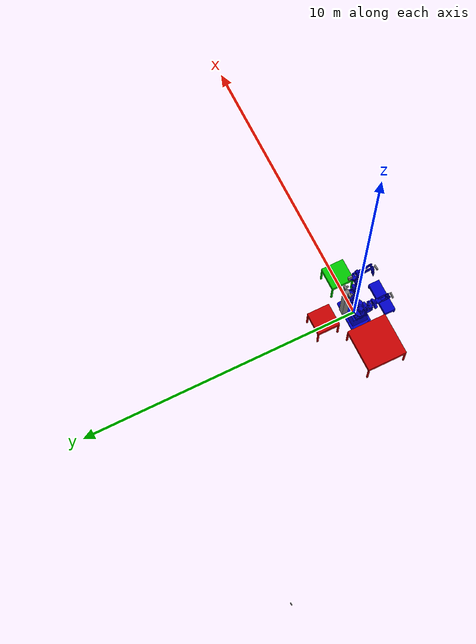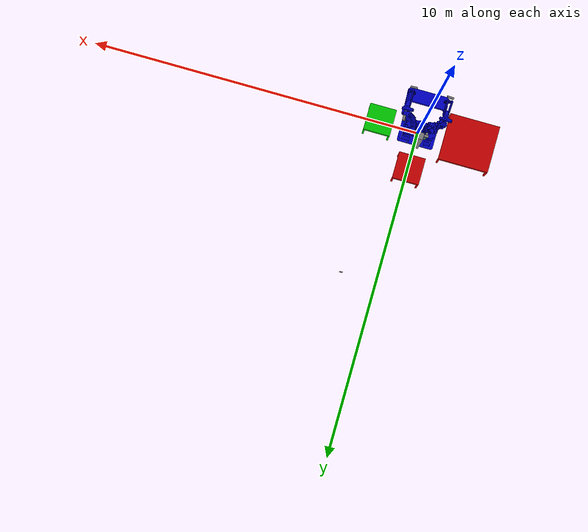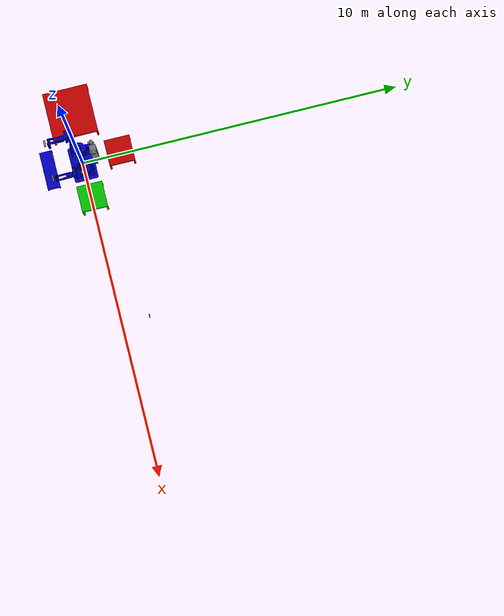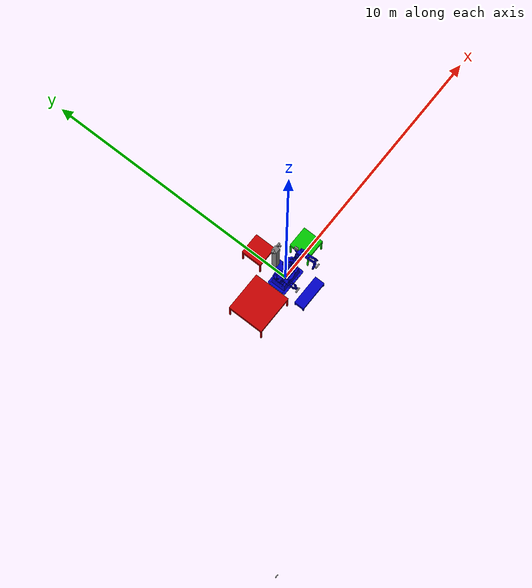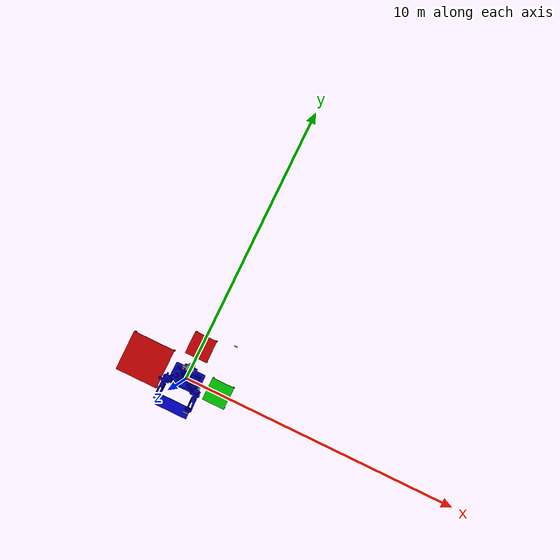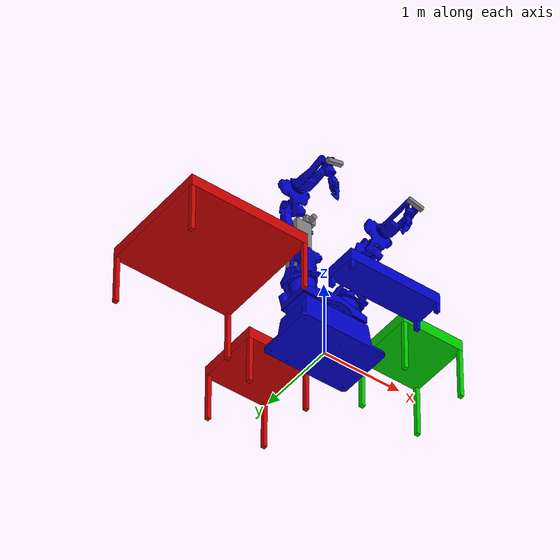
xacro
<?xml version="1.0"?>
<robot xmlns:xacro="http://www.ros.org/wiki/xacro" name="clopema">
	<xacro:include filename="$(find clopema_description)/urdf/common.urdf.xacro" />
	<xacro:include filename="$(find clopema_description)/urdf/room_ctu.urdf.xacro" />
	<xacro:include filename="$(find clopema_description)/urdf/base_link.urdf.xacro" />
	<xacro:include filename="$(find clopema_description)/urdf/ma1400/ma1400.urdf.xacro" />
    <xacro:include filename="$(find clopema_description)/urdf/gripper_v2.urdf.xacro" />
    <xacro:include filename="$(find clopema_description)/urdf/gripper_v3.urdf.xacro" />
	<xacro:include filename="$(find clopema_description)/urdf/r750.urdf.xacro" />
	<xacro:include filename="$(find clopema_description)/urdf/table_adjustable.urdf.xacro" />
    <xacro:include filename="$(find clopema_description)/urdf/table_adjustable_frames_only.urdf.xacro" />
	<xacro:include filename="$(find clopema_description)/urdf/colObjects.urdf.xacro" />
	<xacro:include filename="$(find clopema_description)/urdf/force_sensor.urdf.xacro" />
	<xacro:include filename="$(find clopema_description)/urdf/xtion.urdf.xacro" />
	<xacro:include filename="$(find clopema_description)/urdf/alvar_marker.urdf.xacro" />
	<xacro:include filename="$(find clopema_description)/urdf/robot_head_UG.xacro" />
    <xacro:include filename="$(find clopema_description)/urdf/toradex.urdf.xacro" />
    <xacro:include filename="$(find clopema_description)/urdf/hanging_string.xacro" />

	<xacro:base_link/>
	<xacro:room_ctu/>
	<xacro:r750 parent="base_link" suffix="" color="blue">
		<origin xyz="0.0 0.0 0.0" rpy="0 0 0"/>
	</xacro:r750>

	<xacro:ma1400 parent="r750" suffix="r1_" color="blue">
		<origin xyz="0 -.25 0.1600" rpy="${15*TO_RAD} 0 0"/>
	</xacro:ma1400>
	<xacro:ma1400 parent="r750" suffix="r2_" color="blue">
		<origin xyz="0 .25 0.1600" rpy="-${15*TO_RAD} 0 0"/>
	</xacro:ma1400>

	<xacro:gripper_v3 parent="tip_link" suffix="r1_" color="blue">
		<origin xyz="0.000 0 0.04775" rpy="0 0 ${PI}"/>
	</xacro:gripper_v3>
	<xacro:gripper_v3 parent="tip_link" suffix="r2_" color="blue">
		<origin xyz="0.000 0 0.04775" rpy="0 0 ${PI}"/>
	</xacro:gripper_v3>

    <xacro:robot_head parent="r750">
        <origin rpy="0 0 0" xyz="-0.45 0.15 1.68"/>
    </xacro:robot_head>

    <xacro:alvar_marker parent="r1_tip_link" suffix="r1" width="0.045">
        <origin xyz="-0.032 0 0.0955" rpy="0 -${PI/2} 0"/>
    </xacro:alvar_marker>

    <xacro:alvar_marker parent="r2_tip_link" suffix="r2" width="0.045">
        <origin xyz="-0.032 0 0.0955" rpy="0 -${PI/2} 0"/>
    </xacro:alvar_marker>

    <xacro:alvar_marker parent="base_link" suffix="r750_1" width="0.045">
        <origin xyz="-0.382 -0.2 0.5756" rpy="-${PI/2}  0 0"/>
    </xacro:alvar_marker>

    <xacro:alvar_marker parent="base_link" suffix="r750_2" width="0.045">
        <origin xyz="0.385 -0.2 0.5756" rpy="${PI/2}  0 0"/>
    </xacro:alvar_marker>

    <link name="calib_target"> </link>
    <joint name="calib_target_joint" type="fixed">
        <origin xyz="2.30 0.03 0.97" rpy="0 -${PI/2} 0"/>
        <parent link="base_link"/>
        <child link="calib_target"/>
    </joint>

	<link name="torso_link"/>
	<joint name="torso_link_f" type="fixed">
		  <child link="torso_link"/>
		  <parent link="r750"/>
		  <origin xyz="0 0 -0.51" rpy="0 0 ${PI/2}"/>
	</joint>
	<link name="r1_gg"/>
	<joint name="r1_gg_joint_t" type="fixed">
		<child link="r1_gg"/>
		<parent link="r1_ee"/>
		<origin xyz="-0.025 0 0" rpy="0 0 0"/>
	</joint>

	<link name="r2_gg"/>
	<joint name="r2_gg_joint_t" type="fixed">
		<child link="r2_gg"/>
		<parent link="r2_ee"/>
		<origin xyz="-0.025 0 0" rpy="0 0 0"/>
	</joint>

    <xacro:colObjects/>
    <xacro:xtion parent="r2_link_6" suffix="2" prefix="" color="grey">
        <origin xyz="-0.13 -0.15 0" rpy="0 ${-PI/2} 0"/>
    </xacro:xtion>
    <xacro:xtion parent="r1_link_6" suffix="1" prefix="" color="grey">
        <origin xyz="-0.13 -0.15 0" rpy="0 ${-PI/2} 0"/>
    </xacro:xtion>

    <xacro:xtion parent="torso_link" suffix="3" prefix="" color="grey">
        <origin xyz="0 0 -50.0" rpy="0 0 0"/> <!-- Go away if not calibrated -->
    </xacro:xtion>

    <xacro:force_sensor parent="tip_link" suffix="r1_">
        <origin xyz="0 0 0.035" rpy="0 0 ${PI/3}"/>
    </xacro:force_sensor>
    <xacro:force_sensor parent="tip_link" suffix="r2_">
        <origin xyz="0 0 0.035" rpy="0 0 ${PI/3}"/>
    </xacro:force_sensor>

    <xacro:table parent="base_link" suffix="t1_" color="green" height="0.81" deskx="0.8" desky="0.8">
    	<origin xyz="1.2 0.050 0.81" rpy="0 0 0"/>
    </xacro:table>
    <xacro:table parent="base_link" suffix="t3_" color="red" height="0.777" deskx="1.5" desky="1.4">
        <origin xyz="-1.50 0.0 0.777" rpy="0 0 0"/>
    </xacro:table>

    <xacro:table parent="base_link" suffix="t4_" color="red" height="0.765" deskx="0.8" desky="0.8">
        <origin xyz="0.0 1.2 0.765" rpy="0 0 0"/>
    </xacro:table>

    <xacro:table parent="base_link" suffix="tsorting_" color="blue" height="0.26" deskx="0.39" desky="1.17">
        <origin xyz="0.0 -1.04 0.26" rpy="0 0 ${PI/2}"/>
    </xacro:table>

    <xacro:toradex parent="r2_link_4" prefix="r2_" color="grey">
        <origin xyz="0.1 .15 -.01" rpy="0 0 0"/>
    </xacro:toradex>

</robot>

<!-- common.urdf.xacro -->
<robot xmlns:xacro="http://www.ros.org/wiki/xacro">

	<xacro:property name="PI" value="3.14159265" />
	<xacro:property name="TO_RAD" value="0.017453292" />

	<xacro:macro name="default_inertial">
		<inertial>
			<mass value="1.0" />
			<inertia ixx="1.0" ixy="0.0" ixz="0.0" iyy="1.0" iyz="0.0" izz="1.0" />
		</inertial>
	</xacro:macro>
	<material name="blue">
		<color rgba="0 0 .8 1"/>
	</material>
	<material name="red">
		<color rgba=".8 0 0 1"/>
	</material>
	<material name="green">
		<color rgba="0 .8 0 1"/>
	</material>
	<material name="white">
		<color rgba="1 1 1 1"/>
	</material>
	<material name="grey">
		<color rgba="0.5 0.5 0.5 1"/>
	</material>
	<material name="black">
		<color rgba="0.0 0.0 0.0 1"/>
	</material>
</robot>

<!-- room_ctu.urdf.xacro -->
<robot xmlns:xacro="http://www.ros.org/wiki/xacro">
	<xacro:macro name="room_ctu">
		<link name="ctu_floor">
			<xacro:default_inertial/>
			<collision>
				<geometry>
					<box size="4.000 4.0 0.2"/>
				</geometry>
				<origin xyz="0.0 0.0 0.0"/>
			</collision>
		</link>
		<link name="ctu_roof_1">
			<xacro:default_inertial/>
			<collision>
				<geometry>
					<box size="4.000 0.600 0.2"/>
				</geometry>
				<origin xyz="0.0 0.0 0.1"/>
			</collision>
		</link>
		<link name="ctu_roof_2">
			<xacro:default_inertial/>
			<collision>
				<geometry>
					<box size="4.000 2.470 0.2"/>
				</geometry>
				<origin xyz="0.0 0.0 0.1"/>
			</collision>
		</link>
		<link name="ctu_roof_3">
			<xacro:default_inertial/>
			<collision>
				<geometry>
					<box size="4.000 0.8 0.2"/>
				</geometry>
				<origin xyz="0.0 0.0 0.1" rpy="-0.5835 0 0"/>
			</collision>
		</link>
		<link name="ctu_wall_1">
			<xacro:default_inertial/>
			<collision>
				<geometry>
					<box size="4.000 0.200 2.55"/>
				</geometry>
				<origin xyz="0.0 0.1 1.275" rpy="0 0 0"/>
			</collision>
		</link>
		<link name="ctu_wall_1_bottom">
			<xacro:default_inertial/>
			<collision>
				<geometry>
					<box size="4.000 0.200 2.05"/>
				</geometry>
				<origin xyz="0.0 0.1 1.025" rpy="0 0 0"/>
			</collision>
		</link>
		<link name="ctu_wall_2">
			<xacro:default_inertial/>
			<collision>
				<geometry>
					<box size="4.000 0.200 2.55"/>
				</geometry>
				<origin xyz="0.0 -0.1 1.275" rpy="0 0 0"/>
			</collision>
		</link>
		<link name="ctu_wall_3">
			<xacro:default_inertial/>
			<collision>
				<geometry>
					<box size="0.200 4.000 2.55"/>
				</geometry>
				<origin xyz="0.1 0.0 1.275" rpy="0 0 0"/>
			</collision>
		</link>
		<link name="ctu_wall_4">
			<xacro:default_inertial/>
			<collision>
				<geometry>
					<box size="0.200 4.000 2.55"/>
				</geometry>
				<origin xyz="-0.1 0.0 1.275" rpy="0 0 0"/>
			</collision>
		</link>
		<joint name="ctu_f_floor" type="fixed">
                        <origin xyz="0.0 -0.2 0" rpy="0 0 0"/>
                        <parent link="base_link"/>
                        <child link="ctu_floor"/>
                </joint>
		<joint name="ctu_f_roof_1" type="fixed">
                        <origin xyz="0 0.77 2.45" rpy="0 0 0"/>
                        <parent link="base_link"/>
                        <child link="ctu_roof_1"/>
                </joint>
		<joint name="ctu_f_roof_2" type="fixed">
                        <origin xyz="0 -0.765 2.55" rpy="0 0 0"/>
                        <parent link="base_link"/>
                        <child link="ctu_roof_2"/>
                </joint>
		<joint name="ctu_f_roof_3" type="fixed">
			<origin xyz="0 1.335 2.27500" rpy="0 0 0"/>
                        <parent link="base_link"/>
                        <child link="ctu_roof_3"/>
                </joint>
		<joint name="ctu_f_wall_1" type="fixed">
			<origin xyz="0.0 1.6 2.05" rpy="0 0 0"/>
                        <parent link="base_link"/>
                        <child link="ctu_wall_1"/>
                </joint>
		<joint name="ctu_f_wall_1_bottom" type="fixed">
			<origin xyz="0.0 1.8 0.0" rpy="0 0 0"/>
                        <parent link="base_link"/>
                        <child link="ctu_wall_1_bottom"/>
                </joint>
		<joint name="ctu_f_wall_2" type="fixed">
			<origin xyz=".0 -2.0 0" rpy="0 0 0"/>
                        <parent link="base_link"/>
                        <child link="ctu_wall_2"/>
                </joint>
		<joint name="ctu_f_wall_3" type="fixed">
			<origin xyz="2.0 0 0" rpy="0 0 0"/>
                        <parent link="base_link"/>
                        <child link="ctu_wall_3"/>
                </joint>
		<joint name="ctu_f_wall_4" type="fixed">
			<origin xyz="-2.0 0 0" rpy="0 0 0"/>
                        <parent link="base_link"/>
                        <child link="ctu_wall_4"/>
                </joint>
	</xacro:macro>
</robot>

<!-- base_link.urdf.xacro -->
<robot xmlns:xacro="http://www.ros.org/wiki/xacro">
	<xacro:macro name="base_link">
		<link name="base_link">
		</link>
	</xacro:macro>
</robot>

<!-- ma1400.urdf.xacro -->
<robot xmlns:xacro="http://www.ros.org/wiki/xacro">

	<xacro:include filename="$(find clopema_description)/urdf/ma1400/link_1.urdf.xacro" />
	<xacro:include filename="$(find clopema_description)/urdf/ma1400/link_2.urdf.xacro" />
	<xacro:include filename="$(find clopema_description)/urdf/ma1400/link_3.urdf.xacro" />
	<xacro:include filename="$(find clopema_description)/urdf/ma1400/link_4.urdf.xacro" />
	<xacro:include filename="$(find clopema_description)/urdf/ma1400/link_5.urdf.xacro" />
	<xacro:include filename="$(find clopema_description)/urdf/ma1400/link_6.urdf.xacro" />
	<xacro:include filename="$(find clopema_description)/urdf/ma1400/tip_link.urdf.xacro" />

	<xacro:macro name="ma1400" params="*origin parent suffix color">

		<xacro:link_1 parent="${parent}" suffix="${suffix}" color="${color}">
			<insert_block name="origin" />
		</xacro:link_1>
		<xacro:link_2 parent="link_1" suffix="${suffix}" color="${color}">
			<origin xyz="0.0 0.0 0.0" rpy="0 0 0"/>
		</xacro:link_2>
		<xacro:link_3 parent="link_2" suffix="${suffix}" color="${color}">
			<origin xyz="0.150 0 ${0.2715+0.1785}" rpy="-${PI/2} 0 0"/>
		</xacro:link_3>
		<xacro:link_4 parent="link_3" suffix="${suffix}" color="${color}">
			<origin xyz="0.0 -0.614 0" rpy="${PI} 0 ${-PI/2}"/>
		</xacro:link_4>
		<xacro:link_5 parent="link_4" suffix="${suffix}" color="${color}">
			<origin xyz="0.2 0 0.0" rpy="${-PI/2} 0 0"/>
		</xacro:link_5>
		<xacro:link_6 parent="link_5" suffix="${suffix}" color="${color}">
			<origin xyz="0 0 -0.640" rpy="${PI/2} 0 0"/>
		</xacro:link_6>
		<xacro:tip_link parent="link_6" suffix="${suffix}" color="${color}">
			<origin xyz="0 -0.03 0" rpy="${PI/2} 0 ${-PI/2}"/>
		</xacro:tip_link>
	</xacro:macro>
</robot>

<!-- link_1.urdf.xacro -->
<robot xmlns:xacro="http://www.ros.org/wiki/xacro">
	<xacro:macro name="link_1" params="*origin parent suffix color">
		<link name="${suffix}link_1">
			<xacro:default_inertial/>
			<visual>
				<geometry>
					<mesh scale="0.001 0.001 0.001" filename="package://clopema_description/meshes/link1.stl"/>
				</geometry>
				<material name="${color}" />
				<origin xyz="0 0 0"/>
			</visual>
			<collision>
				<geometry>
					<box size="0.3962 0.303 0.1785"/>
				</geometry>
				<origin xyz="-0.0451 -0.0015 0.08925"/>
			</collision>
		</link>
		<joint name="${suffix}joint_f1" type="fixed">
			<insert_block name="origin" />
			<parent link="${parent}"/>
			<child link="${suffix}link_1"/>
		</joint>
	</xacro:macro>
</robot>

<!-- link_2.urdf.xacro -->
<robot xmlns:xacro="http://www.ros.org/wiki/xacro">
	<xacro:macro name="link_2" params="*origin parent suffix color">
		<link name="${suffix}link_2">
			<xacro:default_inertial/>
			<visual>
				<geometry>
					<mesh scale="0.001 0.001 0.001" filename="package://clopema_description/meshes/link2.stl"/>
				</geometry>
				<material name="${color}" />
				<origin xyz="0 0 0"/>
			</visual>
			<collision>
				<geometry>
					<box size="0.47 0.400 0.4000"/>
				</geometry>
				<origin xyz="0.015 0.0 ${0.20+0.1785}"/>
			</collision>
		</link>
		<joint name="${suffix}joint_s" type="revolute">
			<axis xyz="0 0 1" />
			<limit lower="-${170*TO_RAD}" upper="${170*TO_RAD}" velocity="${220*TO_RAD}" effort="1000.0" />
			<child link="${suffix}link_2"/>
			<insert_block name="origin" />
			<parent link="${suffix}${parent}"/>
		</joint>
	</xacro:macro>
</robot>

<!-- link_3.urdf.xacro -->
<robot xmlns:xacro="http://www.ros.org/wiki/xacro">
	<xacro:macro name="link_3" params="*origin parent suffix color">
		<link name="${suffix}link_3">
			<xacro:default_inertial/>
			<visual>
				<geometry>
					<mesh scale="0.001 0.001 0.001" filename="package://clopema_description/meshes/link3.stl"/>
				</geometry>
				<material name="${color}" />
				<origin xyz="-0.150 0.450 0" rpy="${PI/2} 0 0"/>
			</visual>
			<collision>
				<geometry>
					<box size="0.175 0.175 0.800"/>
				</geometry>
				<origin xyz="0 -0.3 -0.125" rpy="${PI/2} 0 0"/>
			</collision>
		</link>
		<joint name="${suffix}joint_l" type="revolute">
			<axis xyz="0 0 1"/>
			<limit lower="-${90*TO_RAD}" upper="${155*TO_RAD}" velocity="${200*TO_RAD}" effort="1000.0" />
			<child link="${suffix}link_3"/>
			<insert_block name="origin" />
			<parent link="${suffix}${parent}"/>
		</joint>
	</xacro:macro>
</robot>

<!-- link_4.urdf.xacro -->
<robot xmlns:xacro="http://www.ros.org/wiki/xacro">
	<xacro:macro name="link_4" params="*origin parent suffix color">
		<link name="${suffix}link_4">
			<xacro:default_inertial/>
			<visual>
				<geometry>
					<mesh scale="0.001 0.001 0.001" filename="package://clopema_description/meshes/link4.stl"/>
				</geometry>
				<material name="${color}" />
				<origin xyz="-1.064 0.15 0" rpy="${-PI/2} 0 ${-PI/2}"/>
			</visual>
			<collision>
				<geometry>
					<box size="0.3500 0.3600 0.39"/>
				</geometry>
				<origin xyz="0.115 -0.005 0.0225" rpy="${-PI/2} 0 ${-PI/2}"/>
			</collision>
		</link>
		<joint name="${suffix}joint_u" type="revolute">
			<axis xyz="0 0 1" />
			<limit lower="-${80*TO_RAD}" upper="${92*TO_RAD}" velocity="${220*TO_RAD}" effort="1000.0" />
			<child link="${suffix}link_4"/>
			<insert_block name="origin" />
			<parent link="${suffix}${parent}"/>
		</joint>
	</xacro:macro>
</robot>

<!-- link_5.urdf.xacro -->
<robot xmlns:xacro="http://www.ros.org/wiki/xacro">
	<xacro:macro name="link_5" params="*origin parent suffix color">
		<link name="${suffix}link_5">
			<xacro:default_inertial/>
			<visual>
				<geometry>
					<mesh scale="0.001 0.001 0.001" filename="package://clopema_description/meshes/link5.stl"/>
				</geometry>
				<material name="${color}" />
				<origin xyz="-1.264 0 0.150" rpy="0 ${PI/2} 0"/>
			</visual>
			<collision>
				<geometry>
					<box size="0.170 0.176 0.60"/>
				</geometry>
				<origin xyz="-0.01 0.006 -${0.68/2 + 0.15/2}"/>
			</collision>
		</link>
		<joint name="${suffix}joint_r" type="revolute">
			<axis xyz="0 0 1" />
			<limit lower="-${150*TO_RAD}" upper="${150*TO_RAD}" velocity="${410*TO_RAD}" effort="1000.0" />
			<child link="${suffix}link_5"/>
			<insert_block name="origin" />
			<parent link="${suffix}${parent}"/>
		</joint>
	</xacro:macro>
</robot>

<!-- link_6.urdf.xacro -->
<robot xmlns:xacro="http://www.ros.org/wiki/xacro">
	<xacro:macro name="link_6" params="*origin parent suffix color">
		<link name="${suffix}link_6">
			<xacro:default_inertial/>
			<visual>
				<geometry>
					<mesh scale="0.001 0.001 0.001" filename="package://clopema_description/meshes/link6.stl"/>
				</geometry>
				<material name="${color}" />
				<origin xyz="-1.264 0.79 0" rpy="${-PI/2} 0 ${-PI/2}"/>
			</visual>
			<collision>
				<geometry>
					<mesh scale="0.001 0.001 0.001" filename="package://clopema_description/meshes/link6col.stl"/>
				</geometry>
				<origin xyz="-1.264 0.79 0" rpy="${-PI/2} 0 ${-PI/2}"/>
			</collision>
		</link>
		<joint name="${suffix}joint_b" type="revolute">
			<axis xyz="0 0 1" />
			<limit lower="-${45*TO_RAD}" upper="${180*TO_RAD}" velocity="${410*TO_RAD}" effort="1000.0" />
			<child link="${suffix}link_6"/>
			<insert_block name="origin" />
			<parent link="${suffix}${parent}"/>
		</joint>
	</xacro:macro>
</robot>

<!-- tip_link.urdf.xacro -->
<robot xmlns:xacro="http://www.ros.org/wiki/xacro">
	<xacro:macro name="tip_link" params="*origin parent suffix color">
		<link name="${suffix}link_7">
			<xacro:default_inertial/>
		</link>
		<link name="${suffix}tip_link">
			<xacro:default_inertial/>
		</link>
		<joint name="${suffix}joint_t" type="revolute">
			<axis xyz="0 0 1" />
			<limit lower="-${199*TO_RAD}" upper="${199*TO_RAD}" velocity="${610*TO_RAD}" effort="1000.0" />
			<child link="${suffix}link_7"/>
			<insert_block name="origin" />
			<parent link="${suffix}${parent}"/>
		</joint>
		<joint name="${suffix}joint_t_f" type="fixed">
			<parent link="${suffix}link_7"/>
			<child link="${suffix}tip_link"/>
			<origin xyz="0 0 0.2" rpy="0 0 0"/>
		</joint>
	</xacro:macro>
</robot>

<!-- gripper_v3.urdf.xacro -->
<robot xmlns:xacro="http://www.ros.org/wiki/xacro">
        <xacro:macro name="gripper_v3" params="*origin parent suffix color">
                <link name="${suffix}gripper">
                        <xacro:default_inertial/>
                        <visual>
                                <geometry>
                                        <mesh scale="0.001 0.001 0.001" filename="package://clopema_description/meshes/gripper_v3.stl"/>
                                </geometry>
                                <material name="${color}" />
                                <origin xyz="0 0 .116" rpy="${-PI/2} 0 0"/>
                        </visual>
                        <collision>
                                <geometry>
                                        <box size="0.1 0.35 0.12"/>
                                </geometry>
                                <origin xyz="0 0 0.125" rpy="${-PI/2} 0 0"/>
                        </collision>
                </link>
                <joint name="${suffix}joint_fgrip" type="fixed">
                        <child link="${suffix}gripper"/>
                        <insert_block name="origin" />
                        <parent link="${suffix}${parent}"/>
                </joint>
                <link name="${suffix}ee"/>
                <joint name="${suffix}joint_fee" type="fixed">
                        <child link="${suffix}ee"/>
                        <parent link="${suffix}gripper"/>
                        <origin xyz="0.0025 0 0.295" rpy="0 0 0"/>
                </joint>
                <link name="${suffix}ee_par"/>
                <joint name="${suffix}joint_fee_par" type="fixed">
                        <child link="${suffix}ee_par"/>
                        <parent link="${suffix}gripper"/>
                        <origin xyz="0.0025 0 0.295" rpy="0 ${-PI/9} 0"/>
                </joint>
                <link name="${suffix}ps"/>
                <joint name="${suffix}joint_fps" type="fixed">
                    <child link="${suffix}ps"/>
                    <parent link="${suffix}gripper"/>
                    <origin xyz="0.03 0 0.185" rpy="0 ${PI/2 - PI/8} 0"/>
                </joint>
                <link name="${suffix}gripper_status"/>
                <joint name="${suffix}joint_grip" type="prismatic">
                        <axis xyz="0 1 0"/>
                        <limit lower="0" upper="1" velocity="1000.0" effort="1000.0" />
                        <child link="${suffix}gripper_status"/>
                        <insert_block name="origin" />
                        <parent link="${suffix}gripper"/>
                </joint>

        </xacro:macro>
</robot>

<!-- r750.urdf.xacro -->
<robot xmlns:xacro="http://www.ros.org/wiki/xacro">
	<xacro:macro name="r750" params="*origin parent suffix color">
		<link name="${suffix}r750_base">
			<xacro:default_inertial/>
			<visual>
				<geometry>
					<mesh scale="0.001 0.001 0.001" filename="package://clopema_description/meshes/r750_base.stl"/>
				</geometry>
				<material name="${color}" />
				<origin xyz="-0.545 0.37 0.0" rpy="${PI/2} 0 0"/>
			</visual>
			<collision>
				<geometry>
					<box size="1.09 0.74 0.51" />
				</geometry>
				<origin xyz="0 0 0.255"/>
			</collision>
		</link>
		<link name="${suffix}r750">
			<xacro:default_inertial/>
			<visual>
				<geometry>
					<mesh scale="0.001 0.001 0.001" filename="package://clopema_description/meshes/r750.stl"/>
				</geometry>
				<material name="${color}" />
				<origin xyz="0 0 0.060" rpy="${90*TO_RAD} 0 ${90*TO_RAD}"/>
			</visual>
			<collision>
				<geometry>
					<mesh scale="0.001 0.001 0.001" filename="package://clopema_description/meshes/r750col.stl"/>
				</geometry>
				<origin xyz="0 0 0.060" rpy="${90*TO_RAD} 0 ${90*TO_RAD}"/>
			</collision>
		</link>
		<joint name="${suffix}ext_axis" type="revolute">
			<axis xyz="0 0 1" />
			<limit lower="-${115*TO_RAD}" upper="${115*TO_RAD}" velocity="${163*TO_RAD}" effort="1000.0" />
			<child link="${suffix}r750"/>
			<origin xyz="0 0 0.51" rpy="0 0 -${PI/2}"/>
			<parent link="${suffix}r750_base"/>
		</joint>

		<joint name="${suffix}joint_f0" type="fixed">
			<insert_block name="origin" />
			<parent link="${parent}"/>
			<child link="${suffix}r750_base"/>
		</joint>
	</xacro:macro>
</robot>

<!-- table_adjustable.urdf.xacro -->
<robot xmlns:xacro="http://www.ros.org/wiki/xacro">

	<xacro:macro name="table_leg" params="*origin parent suffix color height">
		<link name="${suffix}">
			<xacro:default_inertial/>
			<visual>
				<geometry>
					<box size="0.05 0.05 ${height-0.150}" />
				</geometry>
				<material name="${color}" />
				<origin xyz="0.025 0.025 -${(height+0.15)/2}"/>
			</visual>
		</link>
		<joint name="${suffix}joint_ftable_leg" type="fixed">
			<insert_block name="origin" />
			<parent link="${parent}"/>
			<child link="${suffix}"/>
		</joint>
	</xacro:macro>
	<xacro:macro name="table" params="*origin parent suffix color height deskx desky">
		<link name="${suffix}desk">
			<xacro:default_inertial/>
			<visual>
				<geometry>
					<box size="${deskx} ${desky} 0.15" />
				</geometry>
				<material name="${color}" />
				<origin xyz="0 0 ${-0.075}"/>
			</visual>
		</link>
		<joint name="${suffix}joint_ftable" type="fixed">
			<insert_block name="origin" />
			<parent link="${parent}"/>
			<child link="${suffix}desk"/>
		</joint>
		<xacro:table_leg parent="${suffix}desk" suffix="${suffix}leg_1" color="${color}" height="${height}">
			<origin xyz="${deskx/2} ${desky/2} 0.0" rpy="0 0 ${PI}"/>
		</xacro:table_leg>
		<xacro:table_leg parent="${suffix}desk" suffix="${suffix}leg_2" color="${color}" height="${height}">
			<origin xyz="${deskx/2} -${desky/2} 0.0" rpy="0 0 ${PI/2}"/>
		</xacro:table_leg>
		<xacro:table_leg parent="${suffix}desk" suffix="${suffix}leg_3" color="${color}" height="${height}">
			<origin xyz="-${deskx/2} -${desky/2} 0.0" rpy="0 0 0"/>
		</xacro:table_leg>
		<xacro:table_leg parent="${suffix}desk" suffix="${suffix}leg_4" color="${color}" height="${height}">
			<origin xyz="-${deskx/2} ${desky/2} 0.0" rpy="0 0 ${-PI/2}"/>
		</xacro:table_leg>
	</xacro:macro>
</robot>

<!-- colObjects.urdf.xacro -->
<robot xmlns:xacro="http://www.ros.org/wiki/xacro">
	<xacro:macro name="cable_1" params="*origin parent suffix">
		<link name="${suffix}cable_1">
			<collision>
				<geometry>
					<box size="0.12 0.8 0.12" />
				</geometry>
				<origin xyz="0.0 -0.40 0"/>
			</collision>
		</link>
		<joint name="${suffix}joint_f_cable_1" type="fixed">
			<insert_block name="origin" />
			<parent link="${parent}"/>
			<child link="${suffix}cable_1"/>
		</joint>
	</xacro:macro>
	<xacro:macro name="kinekt" params="*origin parent suffix color prefix">

		<link name="${prefix}xtion${suffix}_ee">
		</link>
		<link name="${prefix}xtion${suffix}">
			<xacro:default_inertial/>
			<visual>
				<geometry>
					<box size="0.20 0.05 0.05" />
				</geometry>
				<material name="${color}"/>
				<origin xyz="0 -0.00 0"/>
			</visual>
			<collision>
				<geometry>
					<box size="0.20 0.05 0.05" />
				</geometry>
				<origin xyz="0 -0.00 0"/>
			</collision>
		</link>

		<joint name="${prefix}joint_fkinect${suffix}" type="fixed">
			<insert_block name="origin" />
			<parent link="${parent}"/>
			<child link="${prefix}xtion${suffix}"/>
		</joint>
		<joint name="${prefix}joint_fkinect${suffix}_ee" type="fixed">
			<insert_block name="origin" />
			<parent link="${parent}"/>
			<child link="${prefix}xtion${suffix}_ee"/>
		</joint>
	</xacro:macro>
	<xacro:macro name="camera" params="*origin parent suffix color">
		<link name="${suffix}camera_stick">
			<xacro:default_inertial/>
			<visual>
				<geometry>
					<box size="0.20 0.20 1.6" />
				</geometry>
				<material name="${color}" />
				<origin xyz="-0.00 0 0.80"/>
			</visual>
			<collision>
				<geometry>
					<box size="0.20 0.20 1.6" />
				</geometry>
				<origin xyz="-0.00 0 0.80"/>
			</collision>
		</link>

		<link name="${suffix}camera">
			<xacro:default_inertial/>
			<collision>
				<geometry>
					<box size="0.40 0.60 0.4" />
				</geometry>
				<origin xyz="-0.00 0 0.10"/>
			</collision>
		</link>
		<joint name="${suffix}joint_fcamera_stick" type="fixed">
			<insert_block name="origin" />
			<parent link="${parent}"/>
			<child link="${suffix}camera_stick"/>
		</joint>
		<joint name="${suffix}joint_fcamera" type="fixed">
			<origin xyz="0.000 0 1.5" rpy="0 0 0"/>
			<parent link="${suffix}camera_stick"/>
			<child link="${suffix}camera"/>
		</joint>
	</xacro:macro>
	<xacro:macro name="colObjects">
		<xacro:cable_1 parent="r1_link_3" suffix="r1_">
			<origin xyz="-0.04 0 -0.27" rpy="0 0 0"/>
		</xacro:cable_1>
		<xacro:cable_1 parent="r2_link_3" suffix="r2_">
			<origin xyz="-0.04 0 -0.27" rpy="0 0 0"/>
		</xacro:cable_1>
		<xacro:camera parent="r750" suffix="" color="grey">
			<origin xyz="-0.450 0 0.12" rpy="0 0 0"/>
		</xacro:camera>
	</xacro:macro>
</robot>

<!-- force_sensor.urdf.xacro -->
<robot xmlns:xacro="http://www.ros.org/wiki/xacro">
    <xacro:macro name="force_sensor" params="*origin parent suffix">
       <link name="${suffix}force_sensor">
           <inertial>
             <origin xyz="0 0 0" rpy="0 0 0"/>
             <mass value="2.5"/>
             <inertia
                ixx="1.0" ixy="0.0" ixz="0.0"
                iyy="1.0" iyz="0.0"
                izz="1.0"/>
           </inertial>
       </link>
       <joint name="${suffix}force_sensor_joint_f" type="fixed">
           <insert_block name="origin" />
           <parent link="${suffix}${parent}"/>
           <child link="${suffix}force_sensor"/>
        </joint>
    </xacro:macro>
</robot>

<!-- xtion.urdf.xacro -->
<robot xmlns:xacro="http://www.ros.org/wiki/xacro">
<xacro:macro name="xtion" params="*origin parent suffix color prefix">
	<link name="${prefix}xtion${suffix}_link_ee"/>
	<link name="${prefix}xtion${suffix}_rgb_optical_frame"/>
	<link name="${prefix}xtion${suffix}_depth_optical_frame"/>
	<link name="${prefix}xtion${suffix}_rgb_frame"/>
	<link name="${prefix}xtion${suffix}_depth_frame"/>
	<link name="${prefix}xtion${suffix}_link">
		<xacro:default_inertial/>
		<visual>
			<geometry>
				<box size="0.20 0.05 0.05" />
			</geometry>
			<material name="${color}"/>
			<origin xyz="0.0225 0 0"/>
		</visual>
		<collision>
			<geometry>
				<box size="0.20 0.05 0.05" />
			</geometry>
			<origin xyz="0.0225 0 0"/>
		</collision>
	</link>

	<!-- Optical frames -->
	<joint name="${prefix}joint_fxtion${suffix}_rgb_optical_frame" type="fixed">
		<origin xyz="0 0 0" rpy="0 0 0"/>
		<parent link="${prefix}xtion${suffix}_link_ee"/>
		<child link="${prefix}xtion${suffix}_rgb_optical_frame"/>
	</joint>
	<joint name="${prefix}joint_fxtion${suffix}_depth_optical_frame" type="fixed">
		<origin xyz="-0.025 0 0" rpy="0 0 0"/>
		<parent link="${prefix}xtion${suffix}_rgb_optical_frame"/>
		<child link="${prefix}xtion${suffix}_depth_optical_frame"/>
	</joint>

	<!-- Collision and IKT links -->
	<joint name="${prefix}joint_fxtion${suffix}_link" type="fixed">
		<origin xyz="0 0 0" rpy="0 0 0"/>
		<parent link="${prefix}xtion${suffix}_link_ee"/>
		<child link="${prefix}xtion${suffix}_link"/>
	</joint>
	<joint name="${prefix}joint_fxtion${suffix}_link_ee" type="fixed">
		<insert_block name="origin"/>
		<parent link="${parent}"/>
		<child link="${prefix}xtion${suffix}_link_ee"/>
	</joint>

	<!--Non optical frames-->
	<joint name="${prefix}joint_fxtion${suffix}_rgb_frame" type="fixed">
		<origin xyz="0 0 0" rpy="${PI/2} -${PI/2} 0"/>
		<parent link="${prefix}xtion${suffix}_rgb_optical_frame"/>
		<child link="${prefix}xtion${suffix}_rgb_frame"/>
	</joint>
	<joint name="${prefix}joint_fxtion${suffix}_depth_frame" type="fixed">
		<origin xyz="0 0 0" rpy="${PI/2} -${PI/2} 0"/>
		<parent link="${prefix}xtion${suffix}_depth_optical_frame"/>
		<child link="${prefix}xtion${suffix}_depth_frame"/>
	</joint>
</xacro:macro>
</robot>

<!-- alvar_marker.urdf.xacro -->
<robot xmlns:xacro="http://www.ros.org/wiki/xacro">
	<xacro:macro name="alvar_marker" params="*origin parent suffix width">

		<link name="alvar_${suffix}_center"></link>

		<link name="alvar_${suffix}_leftDown"></link>
		<link name="alvar_${suffix}_rightDown"></link>
		<link name="alvar_${suffix}_leftUp"></link>
		<link name="alvar_${suffix}_rightUp"></link>

		<joint name="alvar_${suffix}_center_joint" type="fixed">
			<insert_block name="origin"/>
			<parent link="${parent}"/>
			<child link="alvar_${suffix}_center" />
		</joint>

		<joint name="alvar_${suffix}_leftDown_joint" type="fixed">
			<origin xyz="-${width/2} -${width/2} 0" rpy="0 0 0"/>
			<parent link="alvar_${suffix}_center"/>
			<child link="alvar_${suffix}_leftDown"/>
		</joint>

        <joint name="alvar_${suffix}_rightDown_joint" type="fixed">
			<origin xyz="${width/2} -${width/2} 0" rpy="0 0 0"/>
			<parent link="alvar_${suffix}_center"/>
			<child link="alvar_${suffix}_rightDown"/>
        </joint>

        <joint name="alvar_${suffix}_leftUp_joint" type="fixed">
			<origin xyz="-${width/2} ${width/2} 0" rpy="0 0 0"/>
			<parent link="alvar_${suffix}_center"/>
			<child link="alvar_${suffix}_leftUp"/>
        </joint>

        <joint name="alvar_${suffix}_rightUp_joint" type="fixed">
			<origin xyz="${width/2} ${width/2} 0" rpy="0 0 0"/>
			<parent link="alvar_${suffix}_center"/>
			<child link="alvar_${suffix}_rightUp"/>
        </joint>

	</xacro:macro>
</robot>

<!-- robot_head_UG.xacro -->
<robot xmlns:xacro="http://www.ros.org/wiki/xacro">
    <xacro:include filename="$(find clopema_description)/urdf/d46.urdf.xacro" />
    <xacro:include filename="$(find clopema_description)/urdf/robot_head_templates.urdf.xacro" />

	<!-- ************************************************* Variables ************************************************* -->

	<xacro:property name="pi" value = "3.14159265" />
	<xacro:property name="toRad" value = "0.017453292" />

	<!-- ****************************************** Camera and tilt ptu frames ************************************************* -->
	<xacro:macro name="robot_head" params="*origin parent" >

        <ptu_d46 name="left" />
        <ptu_d46 name="right" />

        <!-- Create a fixed joint to connect the PTU to the rest of the robot -->
        <joint name="base_to_left_base" type="fixed">
            <parent link="${parent}"/>
            <child link="left_base_ptu"/>
            <xacro:insert_block name="origin" />
        </joint>
        <joint name="base_to_right_base" type="fixed">
            <parent link="left_base_ptu"/>
            <child link="right_base_ptu"/>
            <origin xyz="0 -0.3 0"/>
        </joint>

        <!-- ************************************************* Camera frames ************************************************* -->

		<!-- ************************************************* Cameras and lenses ************************************************* -->
		<!-- ** FOR DISPLAY PURPOSES, NOT ACTUAL MODEL ** -->
		<xacro:box_macro name="left_camera_virtual" size="0.125 0.07 0.105">
			<origin />
			<material name="grey" />
		</xacro:box_macro>

		<xacro:fixedjoint name="left_camera_virtualjoint" parent="left_mount_ptu" child="left_camera_virtual">
		    <origin xyz="0 0 0.0525" rpy="0 0 ${90*toRad}" />
		</xacro:fixedjoint>

		<xacro:cylinder_macro name="left_lens_virtual" radius="0.035" length="0.07">
			<origin />
			<material name="grey" />
		</xacro:cylinder_macro>

		<xacro:fixedjoint name="left_to_lens_virtual" parent="left_camera_virtual" child="left_lens_virtual">
			<origin rpy="-${90*toRad} 0 0" xyz="0 -0.07 0"/>
		</xacro:fixedjoint>

		<xacro:box_macro name="right_camera_virtual" size="0.125 0.07 0.105">
			<origin />
			<material name="grey" />
		</xacro:box_macro>

		<xacro:fixedjoint name="right_camera_virtualjoint" parent="right_mount_ptu" child="right_camera_virtual">
		    <origin xyz="0 0 0.0525" rpy="0 0 ${90*toRad}" />
		</xacro:fixedjoint>

		<xacro:cylinder_macro name="right_lens_virtual" radius="0.035" length="0.07">
			<origin />
			<material name="grey" />
		</xacro:cylinder_macro>

		<xacro:fixedjoint name="right_to_lens_virtual" parent="right_camera_virtual" child="right_lens_virtual">
			<origin rpy="-${90*toRad} 0 0" xyz="0 -0.07 0"/>
		</xacro:fixedjoint>

	</xacro:macro>
</robot>

<!--Old stuf-->
<!-- ************************************************* Link names ************************************************* -->

    <!-- Change from base_link to ips_bar when integrated with the dual-arm robot -->
<!-- Rotated such that it is aligned to the camera frame -->

	<!-- ************************************************* Robot head dimensions ************************************************* -->
<!-- in degrees -->
<!-- in degrees -->

<!-- Motor not included -->

<!-- In X axis, frontal view (motors at the back) btwn pan and rightmost corner of tilt-->

<!-- ************************************************* Left base ptu ************************************************* -->

        <!-- ************************************************* Right base ptu ************************************************* -->

	    <!-- ************************************************* Left pan ptu ************************************************* -->

	    <!-- ************************************************* Right pan ptu ************************************************* -->

	    <!-- ************************************************* Left tilt ptu ************************************************* -->

        <!-- ************************************************* Right tilt ptu ************************************************* -->

        <!-- ************************************************* Left optical frame ************************************************* -->
	    <!-- Rotate optical frame in order to align them wrt the camera frame -->

	    <!-- ************************************************* Right optical frame ************************************************* -->
	    <!-- Rotate optical frame in order to align them wrt the camera frame -->

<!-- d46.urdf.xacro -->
<robot name="ptu_d46"
       xmlns:xacro="http://ros.org/wiki/xacro">
  <xacro:property name="pan_velocity" value="1.0" />
  <xacro:property name="pan_range" value="2.775" />
  <xacro:property name="tilt_velocity" value="1.0" />
  <xacro:property name="tilt_up_range" value="0.52" />
  <xacro:property name="tilt_down_range" value="0.82" />
  <xacro:property name="joint_effort" value="30" />

  <xacro:macro name="d46_stepper_module"
               params="ptu_name joint_name">
    <link name="${ptu_name}_${joint_name}">
      <visual>
        <material name="ptu_body_color">
          <color rgba="0.3 0.3 0.3 1.0" />
        </material>
        <geometry>
          <box size="0.045 0.065 0.044" />
        </geometry>
        <origin xyz="0 0.011 0" />
      </visual>
      <visual>
        <geometry>
          <box size="0.046 0.044 0.044" />
        </geometry>
        <origin xyz="-0.045 0.0215 0" />
      </visual>
      <visual>
        <geometry>
          <cylinder length="0.015" radius="0.005" />
        </geometry>
        <origin xyz="-0.074 0.021 0" rpy="0 1.57 0" />
      </visual>
    </link>
  </xacro:macro>

  <xacro:macro name="ptu_d46" params="name">
    <d46_stepper_module ptu_name="${name}" joint_name="pan_ptu" /> <!-- Edit -->
    <d46_stepper_module ptu_name="${name}" joint_name="tilt_ptu" /> <!-- Edit -->
    <link name="${name}_base_ptu" /> <!-- Edit -->
    <link name="${name}_tilted_ptu" /> <!-- Edit -->
    <link name="${name}_mount_ptu" /> <!-- Edit -->

    <!-- There's an offset between the origin of the pan joint and the origin of
         the overall device, which is between the mounting screws on its base. -->
    <joint name="${name}_base_ptu" type="fixed"> <!-- Edit -->
      <parent link="${name}_base_ptu"/> <!-- Edit -->
      <child link="${name}_pan_ptu"/> <!-- Edit -->
      <origin xyz="0 -0.009525 0.02286"/>
    </joint>

    <!-- The pan joint -->
    <joint name="${name}_to_pan" type="revolute"> <!-- Edit -->
      <parent link="${name}_pan_ptu" /> <!-- Edit -->
      <origin xyz="0 0 0.068834" rpy="-1.5708 0 0" />
      <child link="${name}_tilt_ptu" /> <!-- Edit -->
      <axis xyz="0 -1 0" rpy="0 0 0" />
      <limit lower="-${pan_range}" upper="${pan_range}"
             effort="${joint_effort}" velocity="${pan_velocity}" />
    </joint>

    <!-- The tilt joint -->
    <joint name="${name}_to_tilt" type="revolute"> <!-- Edit -->
      <parent link="${name}_tilt_ptu" /> <!-- Edit -->
      <origin xyz="0 0 0" rpy="-1.5708 0 0" />
      <child link="${name}_tilted_ptu" /> <!-- Edit -->
      <axis xyz="0 1 0" />
      <limit lower="${-tilt_down_range}" upper="${tilt_up_range}"
             effort="${joint_effort}" velocity="${tilt_velocity}" />
    </joint>

    <!-- Fixed joint to provide a convenient attachment point for accessories. -->
    <joint name="${name}_mount_ptu" type="fixed"> <!-- Edit -->
      <parent link="${name}_tilted_ptu"/> <!-- Edit -->
      <child link="${name}_mount_ptu"/> <!-- Edit -->
      <origin xyz="0 0 -0.039116" rpy="3.1416 0 0" />
    </joint>
  </xacro:macro>
</robot>

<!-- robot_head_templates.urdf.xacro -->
<robot name="ptu_d46"
       xmlns:xacro="http://ros.org/wiki/xacro">

    <!-- ************************************************* Templates ************************************************* -->
    <xacro:macro name="cylinder_macro" params="name radius length *origin *material">
        <link name="${name}">
            <visual>
                    <xacro:insert_block name="origin" />
                    <geometry>
                            <cylinder radius="${radius}" length="${length}" />
                    </geometry>
                    <xacro:insert_block name="material" />
            </visual>
        </link>
        </xacro:macro>

        <xacro:macro name="box_macro" params="name size *origin *material">
        <link name="${name}">
            <visual>
                    <xacro:insert_block name="origin" />
                    <geometry>
                            <box size="${size}" />
                    </geometry>
                    <xacro:insert_block name="material" />
            </visual>
        </link>
        </xacro:macro>

        <xacro:macro name="fixedjoint" params="name parent child *origin">
        <joint name="${name}" type="fixed">
                <xacro:insert_block name="origin" />
                <parent link="${parent}"/>
                <child link="${child}"/>
        </joint>
    </xacro:macro>
</robot>

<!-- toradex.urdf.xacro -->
<robot xmlns:xacro="http://www.ros.org/wiki/xacro">
    <xacro:macro name="toradex" params="*origin parent color prefix">
        <link name="${prefix}toradex">
            <xacro:default_inertial/>
            <visual>
                <geometry>
                    <box size="0.13 0.15 0.07" />
                </geometry>
                <material name="${color}" />
                <origin xyz="0 0 0"/>
            </visual>
            <collision>
                <geometry>
                    <box size="0.13 0.15 0.07" />
                </geometry>
                <origin xyz="0 0 0"/>
            </collision>
        </link>
        <joint name="joint_f_${prefix}toradex" type="fixed">
            <insert_block name="origin" />
            <parent link="${parent}"/>
            <child link="${prefix}toradex"/>
        </joint>
    </xacro:macro>
</robot>
